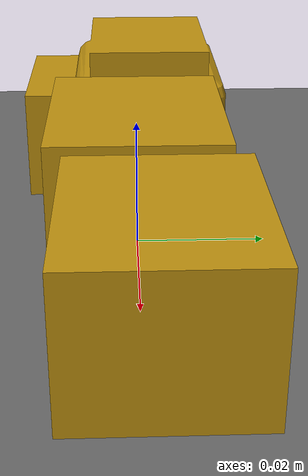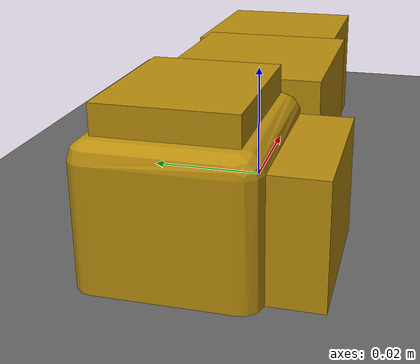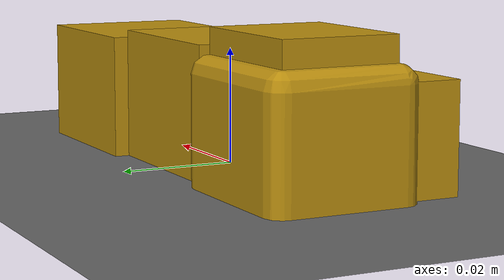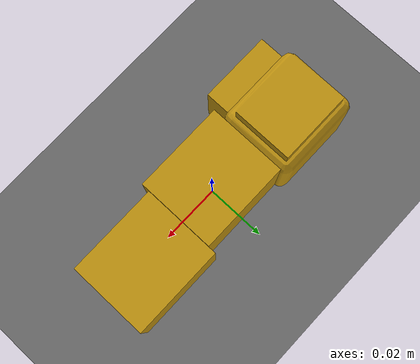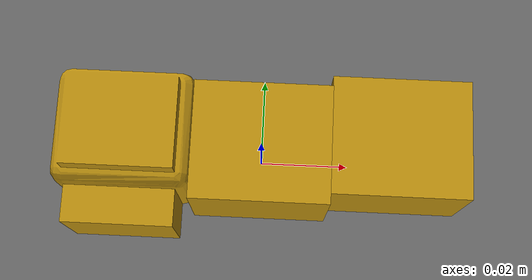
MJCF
<mujoco model="assembly_1">
  <option iterations="50" timestep="0.001" solver="PGS" gravity="0 0 -9.81" />

  <compiler angle="radian" meshdir="meshes" eulerseq="zyx" autolimits="true" />

  <default>
    <joint limited="true" damping="0.01" armature="0.01" frictionloss="0.01" />
    <geom condim="4" contype="1" conaffinity="15" friction="0.9 0.2 0.2" solref="0.001 2" />
    <motor ctrllimited="true" />
    <equality solref="0.001 2" />
    <default class="visualgeom">
      <geom material="visualgeom" condim="1" contype="0" conaffinity="0" />
    </default>
  </default>

  <asset>
    <mesh name="Part_1" file="Part_1.stl" />
    <mesh name="Part_1_2" file="Part_1_2.stl" />
    <mesh name="Part_1_3" file="Part_1_3.stl" />
    <texture name="texplane" type="2d" builtin="checker" rgb1=".0 .0 .0" rgb2=".8 .8 .8" width="100" height="100" />
    <material name="matplane" reflectance="0." texture="texplane" texrepeat="1 1" texuniform="true" />
    <material name="visualgeom" rgba="0.5 0.9 0.2 1" />
  </asset>

  <worldbody>
    <light directional="true" diffuse="0.4 0.4 0.4" specular="0.1 0.1 0.1" pos="0 0 5.0" dir="0 0 -1" castshadow="false" />
    <light directional="true" diffuse="0.6 0.6 0.6" specular="0.2 0.2 0.2" pos="0 0 4" dir="0 0 -1" />
    <geom name="ground" type="plane" pos="0 0 0" size="100 100 0.001" quat="1 0 0 0" material="matplane" condim="3" conaffinity="15" />
    <camera name="fixed" pos="0 -3.0 0.5" xyaxes="1 0 0 0 0 1" />
    <camera name="track" mode="trackcom" pos="0 -3.0 0.5" xyaxes="1 0 0 0 0 1" />
    <body name="root" pos="0 0 0.01" quat="1 0 0 0">
      <freejoint name="root" />
      <site name="imu" size="0.01" pos="0 0 0" />
      <geom type="mesh" rgba="0.729412 0.556863 0.054902 1" mesh="Part_1" contype="1" conaffinity="0" density="0" group="1" class="visualgeom" />
      <geom type="mesh" rgba="0.729412 0.556863 0.054902 1" mesh="Part_1" />
      <body name="Part_1_2" pos="-0.0149872 0.00254935 -0.00125322" quat="0.5 0.5 0.5 0.5">
        <inertial pos="-0.00254935 0.00125322 -0.0149872" quat="0.5 0.5 0.5 0.5" mass="0.025855" diaginertia="3.83105e-06 3.65734e-06 3.27196e-06" />
        <joint name="Revolute_1" pos="0 0 0" axis="0 0 1" range="-1.5708 1.5708" actuatorfrcrange="-80 80" />
        <geom type="mesh" rgba="0.729412 0.556863 0.054902 1" mesh="Part_1_2" contype="1" conaffinity="0" density="0" group="1" class="visualgeom" />
        <geom type="mesh" rgba="0.729412 0.556863 0.054902 1" mesh="Part_1_2" />
      </body>
      <body name="Part_1_3" pos="0.0149872 0.00254935 -0.00125322" quat="0.5 0.5 0.5 0.5">
        <inertial pos="-0.00254935 0.00125322 0.0149872" quat="0.5 0.5 0.5 0.5" mass="0.025855" diaginertia="3.83105e-06 3.65734e-06 3.27196e-06" />
        <joint name="Revolute_2" pos="0 0 0" axis="0 0 -1" range="-1.5708 1.5708" actuatorfrcrange="-80 80" />
        <geom type="mesh" rgba="0.729412 0.556863 0.054902 1" mesh="Part_1_3" contype="1" conaffinity="0" density="0" group="1" class="visualgeom" />
        <geom type="mesh" rgba="0.729412 0.556863 0.054902 1" mesh="Part_1_3" />
      </body>
    </body>
  </worldbody>

  <actuator>
    <motor name="Revolute_1" joint="Revolute_1" ctrllimited="true" ctrlrange="-80 80" gear="1" />
    <motor name="Revolute_2" joint="Revolute_2" ctrllimited="true" ctrlrange="-80 80" gear="1" />
  </actuator>

  <sensor>
    <actuatorpos name="Revolute_1_p" actuator="Revolute_1" />
    <actuatorvel name="Revolute_1_v" actuator="Revolute_1" />
    <actuatorfrc name="Revolute_1_f" actuator="Revolute_1" noise="0.001" />
    <actuatorpos name="Revolute_2_p" actuator="Revolute_2" />
    <actuatorvel name="Revolute_2_v" actuator="Revolute_2" />
    <actuatorfrc name="Revolute_2_f" actuator="Revolute_2" noise="0.001" />
    <framequat name="orientation" objtype="site" noise="0.001" objname="imu" />
    <gyro name="angular-velocity" site="imu" noise="0.005" cutoff="34.9" />
  </sensor>
</mujoco>
